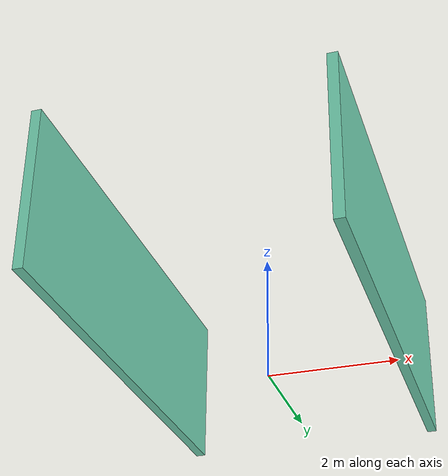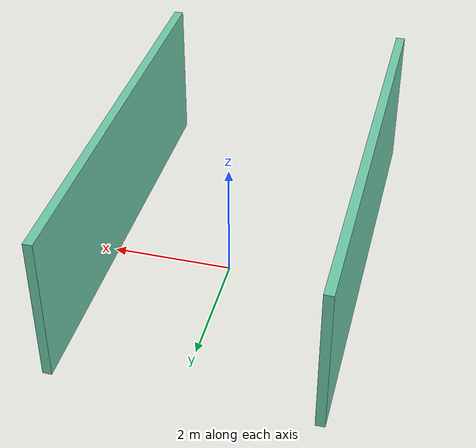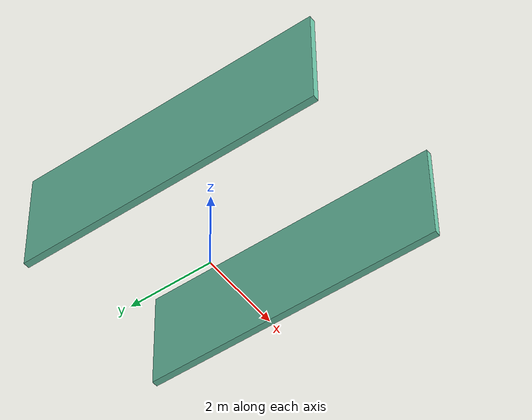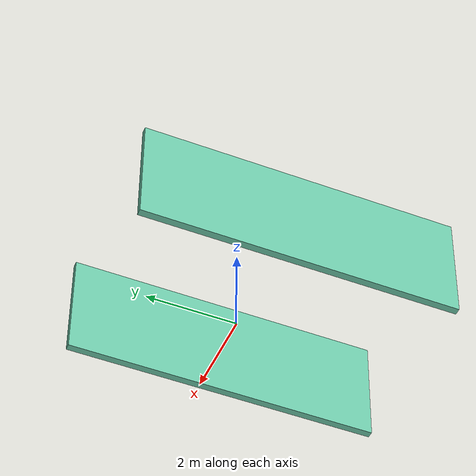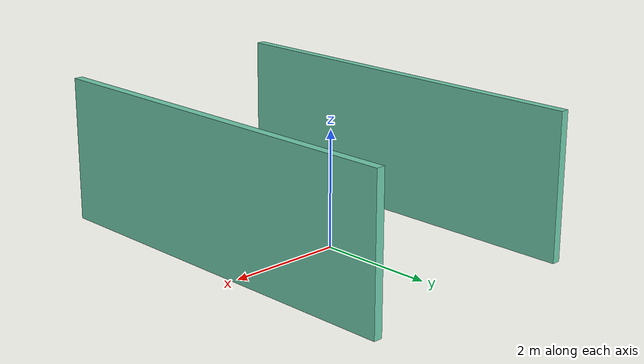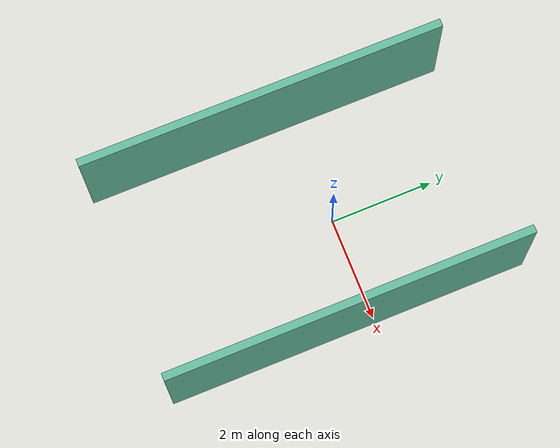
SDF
<?xml version='1.0'?>
<sdf version='1.7'>
  <model name='corridor'>
    <pose>-0.043309 -0.532171 0 0 -0 0</pose>
    <link name='Wall_6'>
      <collision name='Wall_6_Collision'>
        <geometry>
          <box>
            <size>7 0.15 2.5</size>
          </box>
        </geometry>
        <pose>0 0 1.25 0 -0 0</pose>
      </collision>
      <visual name='Wall_6_Visual'>
        <pose>0 0 1.25 0 -0 0</pose>
        <geometry>
          <box>
            <size>7 0.15 2.5</size>
          </box>
        </geometry>
        <material>
          <script>
            <uri>file://media/materials/scripts/gazebo.material</uri>
            <name>Gazebo/Grey</name>
          </script>
          <ambient>0.435294 0.796078 0.67451 1</ambient>
        </material>
        <meta>
          <layer>0</layer>
        </meta>
      </visual>
      <pose>-2.07 -0.01 0 0 -0 1.5708</pose>
    </link>
    <link name='Wall_8'>
      <collision name='Wall_8_Collision'>
        <geometry>
          <box>
            <size>7 0.15 2.5</size>
          </box>
        </geometry>
        <pose>0 0 1.25 0 -0 0</pose>
      </collision>
      <visual name='Wall_8_Visual'>
        <pose>0 0 1.25 0 -0 0</pose>
        <geometry>
          <box>
            <size>7 0.15 2.5</size>
          </box>
        </geometry>
        <material>
          <script>
            <uri>file://media/materials/scripts/gazebo.material</uri>
            <name>Gazebo/Grey</name>
          </script>
          <ambient>0.435294 0.796078 0.67451 1</ambient>
        </material>
        <meta>
          <layer>0</layer>
        </meta>
      </visual>
      <pose>2.07 0.01 0 0 -0 1.5708</pose>
    </link>
    <static>1</static>
  </model>
</sdf>
